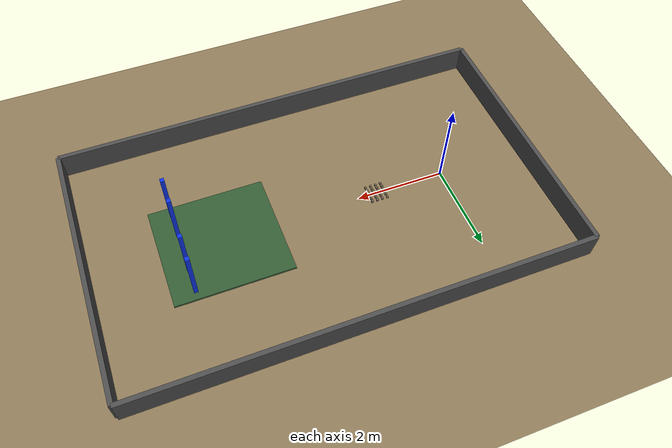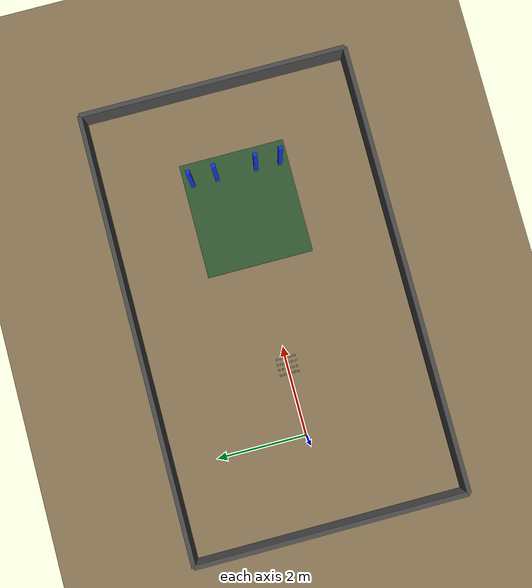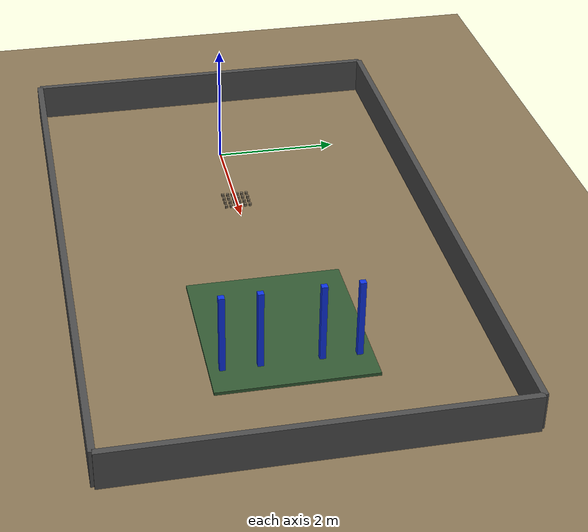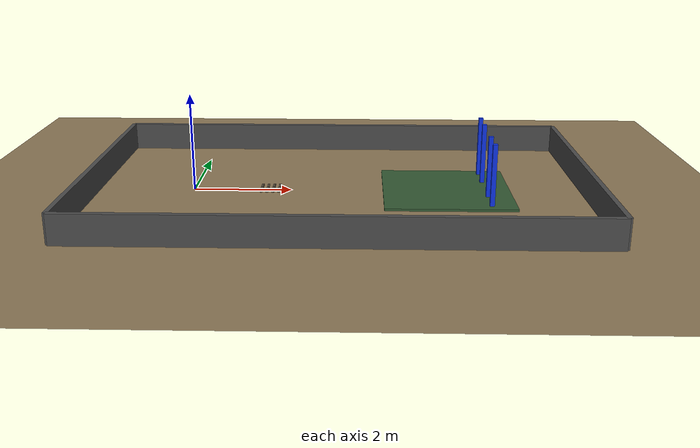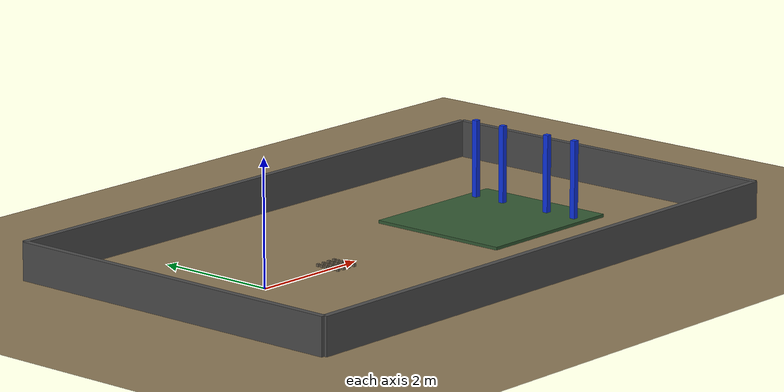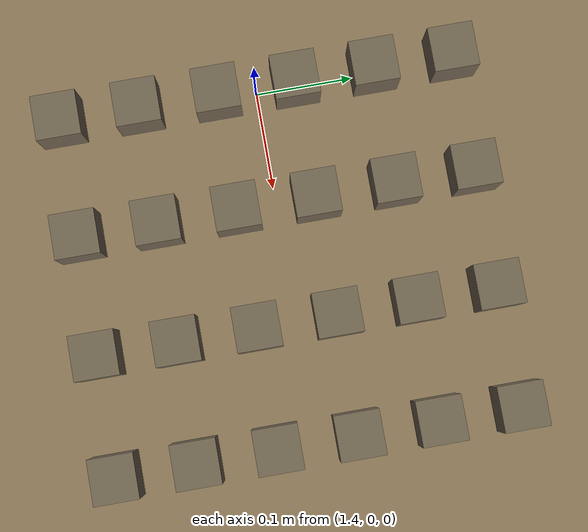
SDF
<sdf version="1.6">
  <world name="lunar_hawks_arena">
    <gravity>0 0 -9.81</gravity>
    <scene>
      <ambient>0.45 0.45 0.45 1</ambient>
      <background>0.08 0.08 0.12 1</background>
      <shadows>true</shadows>
    </scene>
    <light name="sun" type="directional">
      <cast_shadows>true</cast_shadows>
      <pose>0 0 10 0 0 0</pose>
      <diffuse>0.9 0.9 0.9 1</diffuse>
      <specular>0.2 0.2 0.2 1</specular>
      <direction>-0.4 0.2 -1</direction>
    </light>
    <model name="ground_plane">
      <static>true</static>
      <link name="ground">
        <collision name="collision">
          <geometry><plane><normal>0 0 1</normal><size>30 30</size></plane></geometry>
        </collision>
        <visual name="visual">
          <geometry><plane><normal>0 0 1</normal><size>30 30</size></plane></geometry>
          <material>
            <ambient>0.45 0.38 0.28 1</ambient>
            <diffuse>0.55 0.47 0.34 1</diffuse>
          </material>
        </visual>
      </link>
    </model>
    <model name="north">
      <static>true</static>
      <pose>3 3 .3 0 0 0</pose>
      <link name="body">
        <visual name="visual">
          <geometry>
            <box>
              <size>10 .1 .6</size>
            </box>
          </geometry>
          <material>
            <ambient>.3 .3 .3 1</ambient>
            <diffuse>.3 .3 .3 1</diffuse>
          </material>
        </visual>
        <collision name="collision">
          <geometry>
            <box>
              <size>10 .1 .6</size>
            </box>
          </geometry>
        </collision>
      </link>
    </model>
    <model name="south">
      <static>true</static>
      <pose>3 -3 .3 0 0 0</pose>
      <link name="body">
        <visual name="visual">
          <geometry>
            <box>
              <size>10 .1 .6</size>
            </box>
          </geometry>
          <material>
            <ambient>.3 .3 .3 1</ambient>
            <diffuse>.3 .3 .3 1</diffuse>
          </material>
        </visual>
        <collision name="collision">
          <geometry>
            <box>
              <size>10 .1 .6</size>
            </box>
          </geometry>
        </collision>
      </link>
    </model>
    <model name="west">
      <static>true</static>
      <pose>-2 0 .3 0 0 0</pose>
      <link name="body">
        <visual name="visual">
          <geometry>
            <box>
              <size>.1 6 .6</size>
            </box>
          </geometry>
          <material>
            <ambient>.3 .3 .3 1</ambient>
            <diffuse>.3 .3 .3 1</diffuse>
          </material>
        </visual>
        <collision name="collision">
          <geometry>
            <box>
              <size>.1 6 .6</size>
            </box>
          </geometry>
        </collision>
      </link>
    </model>
    <model name="east">
      <static>true</static>
      <pose>8 0 .3 0 0 0</pose>
      <link name="body">
        <visual name="visual">
          <geometry>
            <box>
              <size>.1 6 .6</size>
            </box>
          </geometry>
          <material>
            <ambient>.3 .3 .3 1</ambient>
            <diffuse>.3 .3 .3 1</diffuse>
          </material>
        </visual>
        <collision name="collision">
          <geometry>
            <box>
              <size>.1 6 .6</size>
            </box>
          </geometry>
        </collision>
      </link>
    </model>
    <model name="goal_post_0">
      <static>true</static>
      <pose>6 -1.0 .65 0 0 0</pose>
      <link name="body">
        <visual name="visual">
          <geometry>
            <box>
              <size>.09 .09 1.3</size>
            </box>
          </geometry>
          <material>
            <ambient>.05 .2 .9 1</ambient>
            <diffuse>.05 .2 .9 1</diffuse>
          </material>
        </visual>
        <collision name="collision">
          <geometry>
            <box>
              <size>.09 .09 1.3</size>
            </box>
          </geometry>
        </collision>
      </link>
    </model>
    <model name="goal_post_1">
      <static>true</static>
      <pose>6 -0.45 .65 0 0 0</pose>
      <link name="body">
        <visual name="visual">
          <geometry>
            <box>
              <size>.09 .09 1.3</size>
            </box>
          </geometry>
          <material>
            <ambient>.05 .2 .9 1</ambient>
            <diffuse>.05 .2 .9 1</diffuse>
          </material>
        </visual>
        <collision name="collision">
          <geometry>
            <box>
              <size>.09 .09 1.3</size>
            </box>
          </geometry>
        </collision>
      </link>
    </model>
    <model name="goal_post_2">
      <static>true</static>
      <pose>6 0.45 .65 0 0 0</pose>
      <link name="body">
        <visual name="visual">
          <geometry>
            <box>
              <size>.09 .09 1.3</size>
            </box>
          </geometry>
          <material>
            <ambient>.05 .2 .9 1</ambient>
            <diffuse>.05 .2 .9 1</diffuse>
          </material>
        </visual>
        <collision name="collision">
          <geometry>
            <box>
              <size>.09 .09 1.3</size>
            </box>
          </geometry>
        </collision>
      </link>
    </model>
    <model name="goal_post_3">
      <static>true</static>
      <pose>6 1.0 .65 0 0 0</pose>
      <link name="body">
        <visual name="visual">
          <geometry>
            <box>
              <size>.09 .09 1.3</size>
            </box>
          </geometry>
          <material>
            <ambient>.05 .2 .9 1</ambient>
            <diffuse>.05 .2 .9 1</diffuse>
          </material>
        </visual>
        <collision name="collision">
          <geometry>
            <box>
              <size>.09 .09 1.3</size>
            </box>
          </geometry>
        </collision>
      </link>
    </model>
    <model name="disposal_pad">
      <static>true</static>
      <pose>5.2 0 .025 0 0 0</pose>
      <link name="body">
        <visual name="visual">
          <geometry>
            <box>
              <size>2.6 2.4 .05</size>
            </box>
          </geometry>
          <material>
            <ambient>.2 .35 .2 1</ambient>
            <diffuse>.2 .35 .2 1</diffuse>
          </material>
        </visual>
        <collision name="collision">
          <geometry>
            <box>
              <size>2.6 2.4 .05</size>
            </box>
          </geometry>
        </collision>
      </link>
    </model>
    <model name="regolith_0">
      <static>false</static>
      <pose>1.4 -0.2 .035 0 0 0</pose>
      <link name="body">
        <inertial>
          <mass>0.03</mass>
          <inertia>
            <ixx>2e-05</ixx>
            <iyy>2e-05</iyy>
            <izz>2e-05</izz>
          </inertia>
        </inertial>
        <visual name="visual">
          <geometry>
            <box>
              <size>.045 .045 .045</size>
            </box>
          </geometry>
          <material>
            <ambient>.45 .4 .32 1</ambient>
            <diffuse>.45 .4 .32 1</diffuse>
          </material>
        </visual>
        <collision name="collision">
          <geometry>
            <box>
              <size>.045 .045 .045</size>
            </box>
          </geometry>
        </collision>
      </link>
    </model>
    <model name="regolith_1">
      <static>false</static>
      <pose>1.4 -0.12000000000000001 .035 0 0 0</pose>
      <link name="body">
        <inertial>
          <mass>0.03</mass>
          <inertia>
            <ixx>2e-05</ixx>
            <iyy>2e-05</iyy>
            <izz>2e-05</izz>
          </inertia>
        </inertial>
        <visual name="visual">
          <geometry>
            <box>
              <size>.045 .045 .045</size>
            </box>
          </geometry>
          <material>
            <ambient>.45 .4 .32 1</ambient>
            <diffuse>.45 .4 .32 1</diffuse>
          </material>
        </visual>
        <collision name="collision">
          <geometry>
            <box>
              <size>.045 .045 .045</size>
            </box>
          </geometry>
        </collision>
      </link>
    </model>
    <model name="regolith_2">
      <static>false</static>
      <pose>1.4 -0.04000000000000001 .035 0 0 0</pose>
      <link name="body">
        <inertial>
          <mass>0.03</mass>
          <inertia>
            <ixx>2e-05</ixx>
            <iyy>2e-05</iyy>
            <izz>2e-05</izz>
          </inertia>
        </inertial>
        <visual name="visual">
          <geometry>
            <box>
              <size>.045 .045 .045</size>
            </box>
          </geometry>
          <material>
            <ambient>.45 .4 .32 1</ambient>
            <diffuse>.45 .4 .32 1</diffuse>
          </material>
        </visual>
        <collision name="collision">
          <geometry>
            <box>
              <size>.045 .045 .045</size>
            </box>
          </geometry>
        </collision>
      </link>
    </model>
    <model name="regolith_3">
      <static>false</static>
      <pose>1.4 0.03999999999999998 .035 0 0 0</pose>
      <link name="body">
        <inertial>
          <mass>0.03</mass>
          <inertia>
            <ixx>2e-05</ixx>
            <iyy>2e-05</iyy>
            <izz>2e-05</izz>
          </inertia>
        </inertial>
        <visual name="visual">
          <geometry>
            <box>
              <size>.045 .045 .045</size>
            </box>
          </geometry>
          <material>
            <ambient>.45 .4 .32 1</ambient>
            <diffuse>.45 .4 .32 1</diffuse>
          </material>
        </visual>
        <collision name="collision">
          <geometry>
            <box>
              <size>.045 .045 .045</size>
            </box>
          </geometry>
        </collision>
      </link>
    </model>
    <model name="regolith_4">
      <static>false</static>
      <pose>1.4 0.12 .035 0 0 0</pose>
      <link name="body">
        <inertial>
          <mass>0.03</mass>
          <inertia>
            <ixx>2e-05</ixx>
            <iyy>2e-05</iyy>
            <izz>2e-05</izz>
          </inertia>
        </inertial>
        <visual name="visual">
          <geometry>
            <box>
              <size>.045 .045 .045</size>
            </box>
          </geometry>
          <material>
            <ambient>.45 .4 .32 1</ambient>
            <diffuse>.45 .4 .32 1</diffuse>
          </material>
        </visual>
        <collision name="collision">
          <geometry>
            <box>
              <size>.045 .045 .045</size>
            </box>
          </geometry>
        </collision>
      </link>
    </model>
    <model name="regolith_5">
      <static>false</static>
      <pose>1.4 0.2 .035 0 0 0</pose>
      <link name="body">
        <inertial>
          <mass>0.03</mass>
          <inertia>
            <ixx>2e-05</ixx>
            <iyy>2e-05</iyy>
            <izz>2e-05</izz>
          </inertia>
        </inertial>
        <visual name="visual">
          <geometry>
            <box>
              <size>.045 .045 .045</size>
            </box>
          </geometry>
          <material>
            <ambient>.45 .4 .32 1</ambient>
            <diffuse>.45 .4 .32 1</diffuse>
          </material>
        </visual>
        <collision name="collision">
          <geometry>
            <box>
              <size>.045 .045 .045</size>
            </box>
          </geometry>
        </collision>
      </link>
    </model>
    <model name="regolith_6">
      <static>false</static>
      <pose>1.52 -0.2 .035 0 0 0</pose>
      <link name="body">
        <inertial>
          <mass>0.03</mass>
          <inertia>
            <ixx>2e-05</ixx>
            <iyy>2e-05</iyy>
            <izz>2e-05</izz>
          </inertia>
        </inertial>
        <visual name="visual">
          <geometry>
            <box>
              <size>.045 .045 .045</size>
            </box>
          </geometry>
          <material>
            <ambient>.45 .4 .32 1</ambient>
            <diffuse>.45 .4 .32 1</diffuse>
          </material>
        </visual>
        <collision name="collision">
          <geometry>
            <box>
              <size>.045 .045 .045</size>
            </box>
          </geometry>
        </collision>
      </link>
    </model>
    <model name="regolith_7">
      <static>false</static>
      <pose>1.52 -0.12000000000000001 .035 0 0 0</pose>
      <link name="body">
        <inertial>
          <mass>0.03</mass>
          <inertia>
            <ixx>2e-05</ixx>
            <iyy>2e-05</iyy>
            <izz>2e-05</izz>
          </inertia>
        </inertial>
        <visual name="visual">
          <geometry>
            <box>
              <size>.045 .045 .045</size>
            </box>
          </geometry>
          <material>
            <ambient>.45 .4 .32 1</ambient>
            <diffuse>.45 .4 .32 1</diffuse>
          </material>
        </visual>
        <collision name="collision">
          <geometry>
            <box>
              <size>.045 .045 .045</size>
            </box>
          </geometry>
        </collision>
      </link>
    </model>
    <model name="regolith_8">
      <static>false</static>
      <pose>1.52 -0.04000000000000001 .035 0 0 0</pose>
      <link name="body">
        <inertial>
          <mass>0.03</mass>
          <inertia>
            <ixx>2e-05</ixx>
            <iyy>2e-05</iyy>
            <izz>2e-05</izz>
          </inertia>
        </inertial>
        <visual name="visual">
          <geometry>
            <box>
              <size>.045 .045 .045</size>
            </box>
          </geometry>
          <material>
            <ambient>.45 .4 .32 1</ambient>
            <diffuse>.45 .4 .32 1</diffuse>
          </material>
        </visual>
        <collision name="collision">
          <geometry>
            <box>
              <size>.045 .045 .045</size>
            </box>
          </geometry>
        </collision>
      </link>
    </model>
    <model name="regolith_9">
      <static>false</static>
      <pose>1.52 0.03999999999999998 .035 0 0 0</pose>
      <link name="body">
        <inertial>
          <mass>0.03</mass>
          <inertia>
            <ixx>2e-05</ixx>
            <iyy>2e-05</iyy>
            <izz>2e-05</izz>
          </inertia>
        </inertial>
        <visual name="visual">
          <geometry>
            <box>
              <size>.045 .045 .045</size>
            </box>
          </geometry>
          <material>
            <ambient>.45 .4 .32 1</ambient>
            <diffuse>.45 .4 .32 1</diffuse>
          </material>
        </visual>
        <collision name="collision">
          <geometry>
            <box>
              <size>.045 .045 .045</size>
            </box>
          </geometry>
        </collision>
      </link>
    </model>
    <model name="regolith_10">
      <static>false</static>
      <pose>1.52 0.12 .035 0 0 0</pose>
      <link name="body">
        <inertial>
          <mass>0.03</mass>
          <inertia>
            <ixx>2e-05</ixx>
            <iyy>2e-05</iyy>
            <izz>2e-05</izz>
          </inertia>
        </inertial>
        <visual name="visual">
          <geometry>
            <box>
              <size>.045 .045 .045</size>
            </box>
          </geometry>
          <material>
            <ambient>.45 .4 .32 1</ambient>
            <diffuse>.45 .4 .32 1</diffuse>
          </material>
        </visual>
        <collision name="collision">
          <geometry>
            <box>
              <size>.045 .045 .045</size>
            </box>
          </geometry>
        </collision>
      </link>
    </model>
    <model name="regolith_11">
      <static>false</static>
      <pose>1.52 0.2 .035 0 0 0</pose>
      <link name="body">
        <inertial>
          <mass>0.03</mass>
          <inertia>
            <ixx>2e-05</ixx>
            <iyy>2e-05</iyy>
            <izz>2e-05</izz>
          </inertia>
        </inertial>
        <visual name="visual">
          <geometry>
            <box>
              <size>.045 .045 .045</size>
            </box>
          </geometry>
          <material>
            <ambient>.45 .4 .32 1</ambient>
            <diffuse>.45 .4 .32 1</diffuse>
          </material>
        </visual>
        <collision name="collision">
          <geometry>
            <box>
              <size>.045 .045 .045</size>
            </box>
          </geometry>
        </collision>
      </link>
    </model>
    <model name="regolith_12">
      <static>false</static>
      <pose>1.64 -0.2 .035 0 0 0</pose>
      <link name="body">
        <inertial>
          <mass>0.03</mass>
          <inertia>
            <ixx>2e-05</ixx>
            <iyy>2e-05</iyy>
            <izz>2e-05</izz>
          </inertia>
        </inertial>
        <visual name="visual">
          <geometry>
            <box>
              <size>.045 .045 .045</size>
            </box>
          </geometry>
          <material>
            <ambient>.45 .4 .32 1</ambient>
            <diffuse>.45 .4 .32 1</diffuse>
          </material>
        </visual>
        <collision name="collision">
          <geometry>
            <box>
              <size>.045 .045 .045</size>
            </box>
          </geometry>
        </collision>
      </link>
    </model>
    <model name="regolith_13">
      <static>false</static>
      <pose>1.64 -0.12000000000000001 .035 0 0 0</pose>
      <link name="body">
        <inertial>
          <mass>0.03</mass>
          <inertia>
            <ixx>2e-05</ixx>
            <iyy>2e-05</iyy>
            <izz>2e-05</izz>
          </inertia>
        </inertial>
        <visual name="visual">
          <geometry>
            <box>
              <size>.045 .045 .045</size>
            </box>
          </geometry>
          <material>
            <ambient>.45 .4 .32 1</ambient>
            <diffuse>.45 .4 .32 1</diffuse>
          </material>
        </visual>
        <collision name="collision">
          <geometry>
            <box>
              <size>.045 .045 .045</size>
            </box>
          </geometry>
        </collision>
      </link>
    </model>
    <model name="regolith_14">
      <static>false</static>
      <pose>1.64 -0.04000000000000001 .035 0 0 0</pose>
      <link name="body">
        <inertial>
          <mass>0.03</mass>
          <inertia>
            <ixx>2e-05</ixx>
            <iyy>2e-05</iyy>
            <izz>2e-05</izz>
          </inertia>
        </inertial>
        <visual name="visual">
          <geometry>
            <box>
              <size>.045 .045 .045</size>
            </box>
          </geometry>
          <material>
            <ambient>.45 .4 .32 1</ambient>
            <diffuse>.45 .4 .32 1</diffuse>
          </material>
        </visual>
        <collision name="collision">
          <geometry>
            <box>
              <size>.045 .045 .045</size>
            </box>
          </geometry>
        </collision>
      </link>
    </model>
    <model name="regolith_15">
      <static>false</static>
      <pose>1.64 0.03999999999999998 .035 0 0 0</pose>
      <link name="body">
        <inertial>
          <mass>0.03</mass>
          <inertia>
            <ixx>2e-05</ixx>
            <iyy>2e-05</iyy>
            <izz>2e-05</izz>
          </inertia>
        </inertial>
        <visual name="visual">
          <geometry>
            <box>
              <size>.045 .045 .045</size>
            </box>
          </geometry>
          <material>
            <ambient>.45 .4 .32 1</ambient>
            <diffuse>.45 .4 .32 1</diffuse>
          </material>
        </visual>
        <collision name="collision">
          <geometry>
            <box>
              <size>.045 .045 .045</size>
            </box>
          </geometry>
        </collision>
      </link>
    </model>
    <model name="regolith_16">
      <static>false</static>
      <pose>1.64 0.12 .035 0 0 0</pose>
      <link name="body">
        <inertial>
          <mass>0.03</mass>
          <inertia>
            <ixx>2e-05</ixx>
            <iyy>2e-05</iyy>
            <izz>2e-05</izz>
          </inertia>
        </inertial>
        <visual name="visual">
          <geometry>
            <box>
              <size>.045 .045 .045</size>
            </box>
          </geometry>
          <material>
            <ambient>.45 .4 .32 1</ambient>
            <diffuse>.45 .4 .32 1</diffuse>
          </material>
        </visual>
        <collision name="collision">
          <geometry>
            <box>
              <size>.045 .045 .045</size>
            </box>
          </geometry>
        </collision>
      </link>
    </model>
    <model name="regolith_17">
      <static>false</static>
      <pose>1.64 0.2 .035 0 0 0</pose>
      <link name="body">
        <inertial>
          <mass>0.03</mass>
          <inertia>
            <ixx>2e-05</ixx>
            <iyy>2e-05</iyy>
            <izz>2e-05</izz>
          </inertia>
        </inertial>
        <visual name="visual">
          <geometry>
            <box>
              <size>.045 .045 .045</size>
            </box>
          </geometry>
          <material>
            <ambient>.45 .4 .32 1</ambient>
            <diffuse>.45 .4 .32 1</diffuse>
          </material>
        </visual>
        <collision name="collision">
          <geometry>
            <box>
              <size>.045 .045 .045</size>
            </box>
          </geometry>
        </collision>
      </link>
    </model>
    <model name="regolith_18">
      <static>false</static>
      <pose>1.7599999999999998 -0.2 .035 0 0 0</pose>
      <link name="body">
        <inertial>
          <mass>0.03</mass>
          <inertia>
            <ixx>2e-05</ixx>
            <iyy>2e-05</iyy>
            <izz>2e-05</izz>
          </inertia>
        </inertial>
        <visual name="visual">
          <geometry>
            <box>
              <size>.045 .045 .045</size>
            </box>
          </geometry>
          <material>
            <ambient>.45 .4 .32 1</ambient>
            <diffuse>.45 .4 .32 1</diffuse>
          </material>
        </visual>
        <collision name="collision">
          <geometry>
            <box>
              <size>.045 .045 .045</size>
            </box>
          </geometry>
        </collision>
      </link>
    </model>
    <model name="regolith_19">
      <static>false</static>
      <pose>1.7599999999999998 -0.12000000000000001 .035 0 0 0</pose>
      <link name="body">
        <inertial>
          <mass>0.03</mass>
          <inertia>
            <ixx>2e-05</ixx>
            <iyy>2e-05</iyy>
            <izz>2e-05</izz>
          </inertia>
        </inertial>
        <visual name="visual">
          <geometry>
            <box>
              <size>.045 .045 .045</size>
            </box>
          </geometry>
          <material>
            <ambient>.45 .4 .32 1</ambient>
            <diffuse>.45 .4 .32 1</diffuse>
          </material>
        </visual>
        <collision name="collision">
          <geometry>
            <box>
              <size>.045 .045 .045</size>
            </box>
          </geometry>
        </collision>
      </link>
    </model>
    <model name="regolith_20">
      <static>false</static>
      <pose>1.7599999999999998 -0.04000000000000001 .035 0 0 0</pose>
      <link name="body">
        <inertial>
          <mass>0.03</mass>
          <inertia>
            <ixx>2e-05</ixx>
            <iyy>2e-05</iyy>
            <izz>2e-05</izz>
          </inertia>
        </inertial>
        <visual name="visual">
          <geometry>
            <box>
              <size>.045 .045 .045</size>
            </box>
          </geometry>
          <material>
            <ambient>.45 .4 .32 1</ambient>
            <diffuse>.45 .4 .32 1</diffuse>
          </material>
        </visual>
        <collision name="collision">
          <geometry>
            <box>
              <size>.045 .045 .045</size>
            </box>
          </geometry>
        </collision>
      </link>
    </model>
    <model name="regolith_21">
      <static>false</static>
      <pose>1.7599999999999998 0.03999999999999998 .035 0 0 0</pose>
      <link name="body">
        <inertial>
          <mass>0.03</mass>
          <inertia>
            <ixx>2e-05</ixx>
            <iyy>2e-05</iyy>
            <izz>2e-05</izz>
          </inertia>
        </inertial>
        <visual name="visual">
          <geometry>
            <box>
              <size>.045 .045 .045</size>
            </box>
          </geometry>
          <material>
            <ambient>.45 .4 .32 1</ambient>
            <diffuse>.45 .4 .32 1</diffuse>
          </material>
        </visual>
        <collision name="collision">
          <geometry>
            <box>
              <size>.045 .045 .045</size>
            </box>
          </geometry>
        </collision>
      </link>
    </model>
    <model name="regolith_22">
      <static>false</static>
      <pose>1.7599999999999998 0.12 .035 0 0 0</pose>
      <link name="body">
        <inertial>
          <mass>0.03</mass>
          <inertia>
            <ixx>2e-05</ixx>
            <iyy>2e-05</iyy>
            <izz>2e-05</izz>
          </inertia>
        </inertial>
        <visual name="visual">
          <geometry>
            <box>
              <size>.045 .045 .045</size>
            </box>
          </geometry>
          <material>
            <ambient>.45 .4 .32 1</ambient>
            <diffuse>.45 .4 .32 1</diffuse>
          </material>
        </visual>
        <collision name="collision">
          <geometry>
            <box>
              <size>.045 .045 .045</size>
            </box>
          </geometry>
        </collision>
      </link>
    </model>
    <model name="regolith_23">
      <static>false</static>
      <pose>1.7599999999999998 0.2 .035 0 0 0</pose>
      <link name="body">
        <inertial>
          <mass>0.03</mass>
          <inertia>
            <ixx>2e-05</ixx>
            <iyy>2e-05</iyy>
            <izz>2e-05</izz>
          </inertia>
        </inertial>
        <visual name="visual">
          <geometry>
            <box>
              <size>.045 .045 .045</size>
            </box>
          </geometry>
          <material>
            <ambient>.45 .4 .32 1</ambient>
            <diffuse>.45 .4 .32 1</diffuse>
          </material>
        </visual>
        <collision name="collision">
          <geometry>
            <box>
              <size>.045 .045 .045</size>
            </box>
          </geometry>
        </collision>
      </link>
    </model>
  </world>
</sdf>
